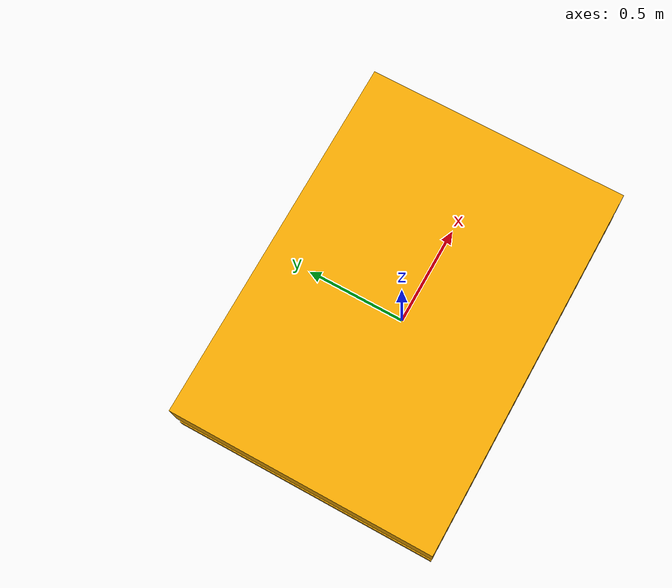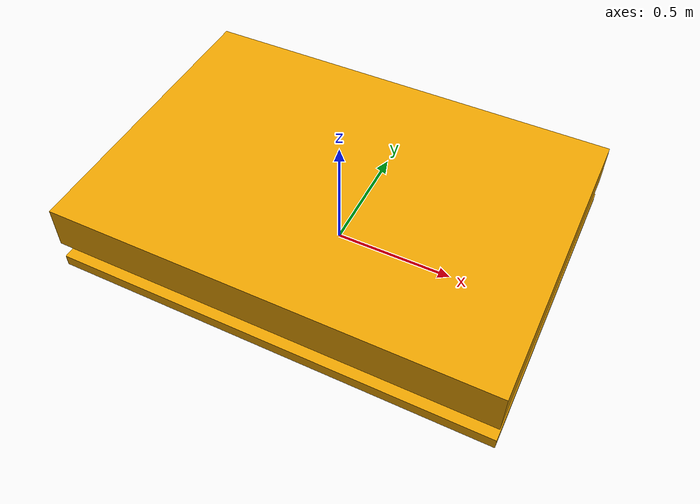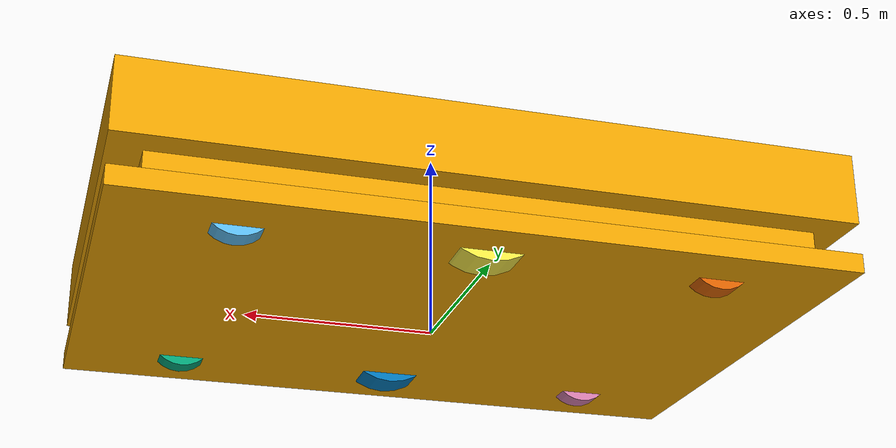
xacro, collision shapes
<?xml version="1.0"?>
<robot xmlns:xacro="http://www.ros.org/wiki/xacro" name="OTTO1500">

  <xacro:property name="base_link_width" value="1.29" />
  <xacro:property name="base_link_length" value="1.83" />
  <xacro:property name="base_link_height" value="0.32" />
  <xacro:property name="base_link_box_height" value=".391179" />

  <xacro:property name="wheel_axis_front" value="0.601175" />
  <xacro:property name="wheel_axis_rear" value="-0.601175" />
  <xacro:property name="wheel_track" value="0.475812" />

  <xacro:property name="wheel_front_rear_radius" value="0.09" />
  <xacro:property name="wheel_front_rear_length" value="0.061434" />
  <xacro:property name="wheel_center_radius" value="0.147" />
  <xacro:property name="wheel_center_length" value="0.1" />

  <xacro:property name="lift_base_width" value="1." />
  <xacro:property name="lift_base_length" value="1.35" />
  <xacro:property name="lift_base_height" value="0.14" />
  <xacro:property name="lift_base_offset" value="0.04" />
  <xacro:property name="lift_base_collider_offset" value="0.07" />

  <xacro:property name="lift_upper_width" value="0.5" />
  <xacro:property name="lift_upper_length" value="1.2" />
  <xacro:property name="lift_upper_height" value="0.02" />

  <xacro:property name="upper_lift_limit" value="0.3" />
  <xacro:property name="lift_module_height" value="0.14" />
  <xacro:property name="lift_module_offset" value="0.02" />

  <xacro:property name="camera_height" value="0.22" />
  <xacro:property name="camera_center_offset" value="0.51" />

  <xacro:property name="lidar_height" value="0.1" />

  <link name="base_link">
    <inertial>
      <origin xyz="0. 0. 0." />
      <mass value="327" />
      <inertia ixx="49.84" ixy="0." ixz="0." iyy="136.60" iyz="0." izz="95.75"/>
    </inertial>
    <visual>
      <origin rpy="0. 0. ${pi/2}" xyz="0. 0. 0."/>
      <geometry>
        <mesh filename="package://otto1500_description/meshes/OTTO1500_bodylink.stl" scale="1.0 1.0 1.0" />
      </geometry>
    </visual>
    <!-- bottom collider box -->
    <collision>
      <origin rpy="0. 0. ${pi/2}" xyz="0. 0. 0.049"/>
      <geometry>
        <box size="${base_link_width} ${base_link_length} 0.05" />
      </geometry>
    </collision>
    <!-- center collider box -->
    <collision>
      <origin rpy="0. 0. ${pi/2}" xyz="0. 0. 0.114"/>
      <geometry>
        <box size="1.135 1.663 0.079" />
      </geometry>
    </collision>
    <!-- top collider box -->
    <collision>
      <origin rpy="0. 0. ${pi/2}" xyz="0. 0. 0.248"/>
      <geometry>
        <box size="${base_link_width} ${base_link_length} 0.187" />
      </geometry>
    </collision>
  </link>

  <!-- Wheel front left -->
  <link name="wheel_FL">
    <inertial>
      <origin xyz="0. 0. 0." />
      <mass value="5" />
      <inertia ixx="1." ixy="0." ixz="0." iyy="1." iyz="0." izz="1."/>
    </inertial>
    <visual>
      <origin rpy="0. 0. ${pi/2}" xyz="0. 0. ${-wheel_front_rear_radius}"/>
      <geometry>
        <mesh filename="package://otto1500_description/meshes/OTTO1500_wheel_front_rear.stl" scale="1.0 1.0 1.0" />
      </geometry>
    </visual>
    <collision>
      <origin rpy="${pi/2} ${pi/2} 0." xyz="0. 0. 0."/>
      <geometry>
        <cylinder radius="${wheel_front_rear_radius}" length="${wheel_front_rear_length}"/>
      </geometry>
    </collision>
  </link>
  <joint name="wheel_FL_joint" type="continuous">
    <parent link="base_link" />
    <child link="wheel_FL" />
    <axis xyz="0. 1. 0." />
    <origin rpy="0. 0. 0." xyz="${wheel_axis_front} ${wheel_track} ${wheel_front_rear_radius}" />
  </joint>

  <link name="wheel_FR">
    <inertial>
      <origin xyz="0. 0. 0." />
      <mass value="5" />
      <inertia ixx="1." ixy="0." ixz="0." iyy="1." iyz="0." izz="1."/>
    </inertial>
    <visual>
      <origin rpy="0. 0. ${pi/2}" xyz="0. 0. ${-wheel_front_rear_radius}"/>
      <geometry>
        <mesh filename="package://otto1500_description/meshes/OTTO1500_wheel_front_rear.stl" scale="1.0 1.0 1.0" />
      </geometry>
    </visual>
    <collision>
      <origin rpy="${pi/2} ${pi/2} 0." xyz="0. 0. 0."/>
      <geometry>
        <cylinder radius="${wheel_front_rear_radius}" length="${wheel_front_rear_length}"/>
      </geometry>
    </collision>
  </link>
  <joint name="wheel_FR_joint" type="continuous">
    <parent link="base_link" />
    <child link="wheel_FR" />
    <axis xyz="0. 1. 0." />
    <origin rpy="0. 0. 0." xyz="${wheel_axis_front} ${-wheel_track} ${wheel_front_rear_radius}" />
  </joint>

  <link name="wheel_CL">
    <inertial>
      <origin xyz="0. 0. 0." />
      <mass value="5" />
      <inertia ixx="1." ixy="0." ixz="0." iyy="1." iyz="0." izz="1."/>
    </inertial>
    <visual>
      <origin rpy="0. 0. ${pi/2}" xyz="0. 0. ${-wheel_center_radius}"/>
      <geometry>
        <mesh filename="package://otto1500_description/meshes/OTTO1500_wheel_center.stl" scale="1.0 1.0 1.0" />
      </geometry>
    </visual>
    <collision>
      <origin rpy="${pi/2} ${pi/2} 0." xyz="0. 0. 0."/>
      <geometry>
        <cylinder radius="${wheel_center_radius}" length="${wheel_center_length}"/>
      </geometry>
    </collision>
  </link>
  <joint name="wheel_CL_joint" type="continuous">
    <parent link="base_link" />
    <child link="wheel_CL" />
    <axis xyz="0. 1. 0." />
    <origin rpy="0. 0. 0." xyz="0. ${wheel_track} ${wheel_center_radius}" />
  </joint>

  <link name="wheel_CR">
    <inertial>
      <origin xyz="0. 0. 0." />
      <mass value="5" />
      <inertia ixx="1." ixy="0." ixz="0." iyy="1." iyz="0." izz="1."/>
    </inertial>
    <visual>
      <origin rpy="0. 0. ${pi/2}" xyz="0. 0. ${-wheel_center_radius}"/>
      <geometry>
        <mesh filename="package://otto1500_description/meshes/OTTO1500_wheel_center.stl" scale="1.0 1.0 1.0" />
      </geometry>
    </visual>
    <collision>
      <origin rpy="${pi/2} ${pi/2} 0." xyz="0. 0. 0."/>
      <geometry>
        <cylinder radius="${wheel_center_radius}" length="${wheel_center_length}"/>
      </geometry>
    </collision>
  </link>
  <joint name="wheel_CR_joint" type="continuous">
    <parent link="base_link" />
    <child link="wheel_CR" />
    <axis xyz="0. 1. 0." />
    <origin rpy="0. 0. 0." xyz="0. ${-wheel_track} ${wheel_center_radius}" />
  </joint>

  <link name="wheel_RL">
    <inertial>
      <origin xyz="0. 0. 0." />
      <mass value="5" />
      <inertia ixx="1." ixy="0." ixz="0." iyy="1." iyz="0." izz="1."/>
    </inertial>
    <visual>
      <origin rpy="0. 0. ${pi/2}" xyz="0. 0. ${-wheel_front_rear_radius}"/>
      <geometry>
        <mesh filename="package://otto1500_description/meshes/OTTO1500_wheel_front_rear.stl" scale="1.0 1.0 1.0" />
      </geometry>
    </visual>
    <collision>
      <origin rpy="${pi/2} ${pi/2} 0." xyz="0. 0. 0."/>
      <geometry>
        <cylinder radius="${wheel_front_rear_radius}" length="${wheel_front_rear_length}"/>
      </geometry>
    </collision>
  </link>
  <joint name="wheel_RL_joint" type="continuous">
    <parent link="base_link" />
    <child link="wheel_RL" />
    <axis xyz="0. 1. 0." />
    <origin rpy="0. 0. 0." xyz="${wheel_axis_rear} ${wheel_track} ${wheel_front_rear_radius}" />
  </joint>

  <link name="wheel_RR">
    <inertial>
      <origin xyz="0. 0. 0." />
      <mass value="5" />
      <inertia ixx="1." ixy="0." ixz="0." iyy="1." iyz="0." izz="1."/>
    </inertial>
    <visual>
      <origin rpy="0. 0. ${pi/2}" xyz="0. 0. ${-wheel_front_rear_radius}"/>
      <geometry>
        <mesh filename="package://otto1500_description/meshes/OTTO1500_wheel_front_rear.stl" scale="1.0 1.0 1.0" />
      </geometry>
    </visual>
    <collision>
      <origin rpy="${pi/2} ${pi/2} 0." xyz="0. 0. 0."/>
      <geometry>
        <cylinder radius="${wheel_front_rear_radius}" length="${wheel_front_rear_length}"/>
      </geometry>
    </collision>
  </link>
  <joint name="wheel_RR_joint" type="continuous">
    <parent link="base_link" />
    <child link="wheel_RR" />
    <axis xyz="0. 1. 0." />
    <origin rpy="0. 0. 0." xyz="${wheel_axis_rear} ${-wheel_track} ${wheel_front_rear_radius}" />
  </joint>

  <link name="lidar_F" />
  <joint name="lidar_F_joint" type="fixed">
    <parent link="base_link" />
    <child link="lidar_F" />
    <origin rpy="0. 0. 0." xyz="${base_link_length * 0.47} ${base_link_width * 0.47} ${lidar_height}" />
  </joint>

  <link name="lidar_R" />
  <joint name="lidar_R_joint" type="fixed">
    <parent link="base_link" />
    <child link="lidar_R" />
    <origin rpy="0. 0. 0." xyz="${-base_link_length * 0.47} ${-base_link_width * 0.47} ${lidar_height}" />
  </joint>

  <link name="camera_FL" />
  <joint name="camera_FL_joint" type="fixed">
    <parent link="base_link" />
    <child link="camera_FL" />
    <origin rpy="0. 0. 0." xyz="${base_link_length / 2} ${camera_center_offset} ${camera_height}" />
  </joint>

  <link name="camera_FR" />
  <joint name="camera_FR_joint" type="fixed">
    <parent link="base_link" />
    <child link="camera_FR" />
    <origin rpy="0. 0. 0." xyz="${base_link_length / 2} ${-camera_center_offset} ${camera_height}" />
  </joint>

  <link name="camera_RL" />
  <joint name="camera_RL_joint" type="fixed">
    <parent link="base_link" />
    <child link="camera_RL" />
    <origin rpy="0. 0. 0." xyz="${-base_link_length / 2} ${camera_center_offset} ${camera_height}" />
  </joint>

  <link name="camera_RR" />
  <joint name="camera_RR_joint" type="fixed">
    <parent link="base_link" />
    <child link="camera_RR" />
    <origin rpy="0. 0. 0." xyz="${-base_link_length / 2} ${-camera_center_offset} ${camera_height}" />
  </joint>

</robot>
